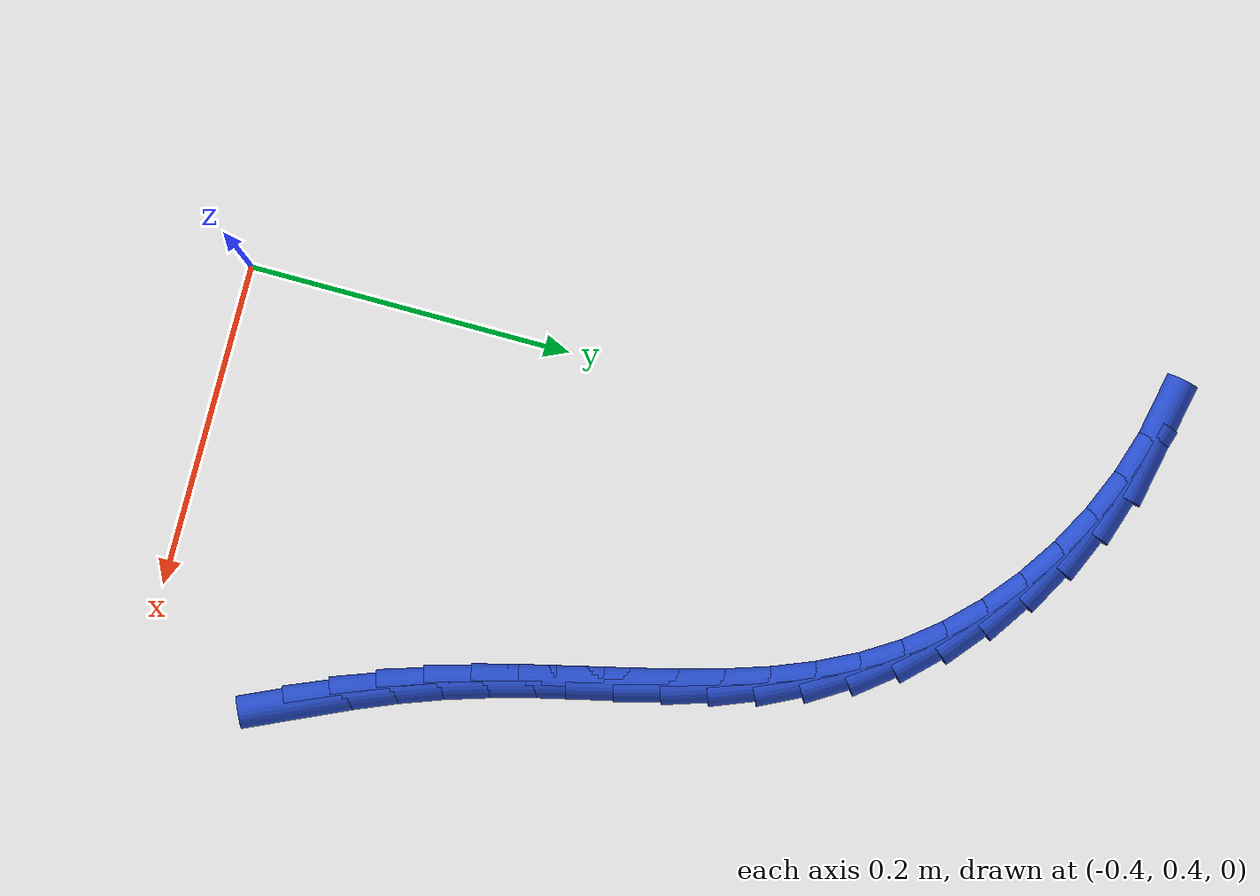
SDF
<sdf version="1.6">
 <world name="default">
  <model name="ground_plane">
   <static>1</static>
   <link name="link">
    <collision name="collision">
     <geometry><plane><normal>0 0 1</normal><size>100 100</size></plane></geometry>
     <surface><friction><ode><mu>100</mu><mu2>50</mu2></ode></friction></surface>
    </collision>
    <visual name="visual">
     <cast_shadows>0</cast_shadows>
     <geometry><plane><normal>0 0 1</normal><size>100 100</size></plane></geometry>
     <material>
      <script><uri>file://media/materials/scripts/gazebo.material</uri><name>Gazebo/WhiteGlow</name></script>
     </material>
    </visual>
   </link>
  </model>
  <model name="line">
   <link name="link_19">
    <pose>-0.15397915452750355 0.5019335383562409 0.01 0 1.57 -1.1375055177598266</pose>
    <collision name="collision">
     <geometry><cylinder><radius>0.01</radius><length>0.08</length></cylinder></geometry>
    </collision>
    <visual name="visual">
     <material>
      <script><name>Gazebo/Blue</name><uri>file://media/materials/scripts/gazebo.material</uri></script>
     </material>
     <geometry><cylinder><radius>0.01</radius><length>0.08</length></cylinder></geometry>
    </visual>
   </link>
   <link name="link_20">
    <pose>-0.16582137988488782 0.5275322597240039 0.01 0 1.57 -1.1728587956179286</pose>
    <collision name="collision">
     <geometry><cylinder><radius>0.01</radius><length>0.08</length></cylinder></geometry>
    </collision>
    <visual name="visual">
     <material>
      <script><name>Gazebo/Blue</name><uri>file://media/materials/scripts/gazebo.material</uri></script>
     </material>
     <geometry><cylinder><radius>0.01</radius><length>0.08</length></cylinder></geometry>
    </visual>
   </link>
   <link name="link_21">
    <pose>-0.17675538826458437 0.553543058561728 0.01 0 1.57 -1.216155259624458</pose>
    <collision name="collision">
     <geometry><cylinder><radius>0.01</radius><length>0.08</length></cylinder></geometry>
    </collision>
    <visual name="visual">
     <material>
      <script><name>Gazebo/Blue</name><uri>file://media/materials/scripts/gazebo.material</uri></script>
     </material>
     <geometry><cylinder><radius>0.01</radius><length>0.08</length></cylinder></geometry>
    </visual>
   </link>
   <link name="link_22">
    <pose>-0.18657073679844471 0.5800497557390633 0.01 0 1.57 -1.2657892929324055</pose>
    <collision name="collision">
     <geometry><cylinder><radius>0.01</radius><length>0.08</length></cylinder></geometry>
    </collision>
    <visual name="visual">
     <material>
      <script><name>Gazebo/Blue</name><uri>file://media/materials/scripts/gazebo.material</uri></script>
     </material>
     <geometry><cylinder><radius>0.01</radius><length>0.08</length></cylinder></geometry>
    </visual>
   </link>
   <link name="link_23">
    <pose>-0.1950931993404507 0.6071197192788982 0.01 0 1.57 -1.3067886795904688</pose>
    <collision name="collision">
     <geometry><cylinder><radius>0.01</radius><length>0.08</length></cylinder></geometry>
    </collision>
    <visual name="visual">
     <material>
      <script><name>Gazebo/Blue</name><uri>file://media/materials/scripts/gazebo.material</uri></script>
     </material>
     <geometry><cylinder><radius>0.01</radius><length>0.08</length></cylinder></geometry>
    </visual>
   </link>
   <link name="link_24">
    <pose>-0.20253383872016348 0.6346452847853522 0.01 0 1.57 -1.3305509640552622</pose>
    <collision name="collision">
     <geometry><cylinder><radius>0.01</radius><length>0.08</length></cylinder></geometry>
    </collision>
    <visual name="visual">
     <material>
      <script><name>Gazebo/Blue</name><uri>file://media/materials/scripts/gazebo.material</uri></script>
     </material>
     <geometry><cylinder><radius>0.01</radius><length>0.08</length></cylinder></geometry>
    </visual>
   </link>
   <link name="link_25">
    <pose>-0.2093363139412215 0.662413122054476 0.01 0 1.57 -1.3372827870785764</pose>
    <collision name="collision">
     <geometry><cylinder><radius>0.01</radius><length>0.08</length></cylinder></geometry>
    </collision>
    <visual name="visual">
     <material>
      <script><name>Gazebo/Blue</name><uri>file://media/materials/scripts/gazebo.material</uri></script>
     </material>
     <geometry><cylinder><radius>0.01</radius><length>0.08</length></cylinder></geometry>
    </visual>
   </link>
   <link name="link_26">
    <pose>-0.21594750210695585 0.6902084389360696 0.01 0 1.57 -1.327018796385844</pose>
    <collision name="collision">
     <geometry><cylinder><radius>0.01</radius><length>0.08</length></cylinder></geometry>
    </collision>
    <visual name="visual">
     <material>
      <script><name>Gazebo/Blue</name><uri>file://media/materials/scripts/gazebo.material</uri></script>
     </material>
     <geometry><cylinder><radius>0.01</radius><length>0.08</length></cylinder></geometry>
    </visual>
   </link>
   <link name="link_27">
    <pose>-0.22281428032069742 0.7178164432799337 0.01 0 1.57 -1.2994382978303265</pose>
    <collision name="collision">
     <geometry><cylinder><radius>0.01</radius><length>0.08</length></cylinder></geometry>
    </collision>
    <visual name="visual">
     <material>
      <script><name>Gazebo/Blue</name><uri>file://media/materials/scripts/gazebo.material</uri></script>
     </material>
     <geometry><cylinder><radius>0.01</radius><length>0.08</length></cylinder></geometry>
    </visual>
   </link>
   <link name="link_28">
    <pose>-0.23038352568577714 0.7450223429358682 0.01 0 1.57 -1.2539418290023816</pose>
    <collision name="collision">
     <geometry><cylinder><radius>0.01</radius><length>0.08</length></cylinder></geometry>
    </collision>
    <visual name="visual">
     <material>
      <script><name>Gazebo/Blue</name><uri>file://media/materials/scripts/gazebo.material</uri></script>
     </material>
     <geometry><cylinder><radius>0.01</radius><length>0.08</length></cylinder></geometry>
    </visual>
   </link>
   <link name="link_29">
    <pose>-0.23910211530552597 0.7716113457536737 0.01 0 1.57 -1.189892220184687</pose>
    <collision name="collision">
     <geometry><cylinder><radius>0.01</radius><length>0.08</length></cylinder></geometry>
    </collision>
    <visual name="visual">
     <material>
      <script><name>Gazebo/Blue</name><uri>file://media/materials/scripts/gazebo.material</uri></script>
     </material>
     <geometry><cylinder><radius>0.01</radius><length>0.08</length></cylinder></geometry>
    </visual>
   </link>
   <link name="link_30">
    <pose>-0.24941692628327483 0.7973686595831505 0.01 0 1.57 -1.1070680084785087</pose>
    <collision name="collision">
     <geometry><cylinder><radius>0.01</radius><length>0.08</length></cylinder></geometry>
    </collision>
    <visual name="visual">
     <material>
      <script><name>Gazebo/Blue</name><uri>file://media/materials/scripts/gazebo.material</uri></script>
     </material>
     <geometry><cylinder><radius>0.01</radius><length>0.08</length></cylinder></geometry>
    </visual>
   </link>
   <link name="link_31">
    <pose>-0.26177483572235477 0.8220794922740988 0.01 0 1.57 -1.0063335818160861</pose>
    <collision name="collision">
     <geometry><cylinder><radius>0.01</radius><length>0.08</length></cylinder></geometry>
    </collision>
    <visual name="visual">
     <material>
      <script><name>Gazebo/Blue</name><uri>file://media/materials/scripts/gazebo.material</uri></script>
     </material>
     <geometry><cylinder><radius>0.01</radius><length>0.08</length></cylinder></geometry>
    </visual>
   </link>
   <link name="link_32">
    <pose>-0.2766227195830525 0.845529051663795 0.01 0 1.57 -0.894278461633629</pose>
    <collision name="collision">
     <geometry><cylinder><radius>0.01</radius><length>0.08</length></cylinder></geometry>
    </collision>
    <visual name="visual">
     <material>
      <script><name>Gazebo/Blue</name><uri>file://media/materials/scripts/gazebo.material</uri></script>
     </material>
     <geometry><cylinder><radius>0.01</radius><length>0.08</length></cylinder></geometry>
    </visual>
   </link>
   <link name="link_33">
    <pose>-0.29426438142410216 0.867500977982338 0.01 0 1.57 -0.7871555242824446</pose>
    <collision name="collision">
     <geometry><cylinder><radius>0.01</radius><length>0.08</length></cylinder></geometry>
    </collision>
    <visual name="visual">
     <material>
      <script><name>Gazebo/Blue</name><uri>file://media/materials/scripts/gazebo.material</uri></script>
     </material>
     <geometry><cylinder><radius>0.01</radius><length>0.08</length></cylinder></geometry>
    </visual>
   </link>
   <link name="link_34">
    <pose>-0.314465290873548 0.8877730130746417 0.01 0 1.57 -0.6863180000720027</pose>
    <collision name="collision">
     <geometry><cylinder><radius>0.01</radius><length>0.08</length></cylinder></geometry>
    </collision>
    <visual name="visual">
     <material>
      <script><name>Gazebo/Blue</name><uri>file://media/materials/scripts/gazebo.material</uri></script>
     </material>
     <geometry><cylinder><radius>0.01</radius><length>0.08</length></cylinder></geometry>
    </visual>
   </link>
   <link name="link_35">
    <pose>-0.3368643249642868 0.9061215117434057 0.01 0 1.57 -0.5892572759337389</pose>
    <collision name="collision">
     <geometry><cylinder><radius>0.01</radius><length>0.08</length></cylinder></geometry>
    </collision>
    <visual name="visual">
     <material>
      <script><name>Gazebo/Blue</name><uri>file://media/materials/scripts/gazebo.material</uri></script>
     </material>
     <geometry><cylinder><radius>0.01</radius><length>0.08</length></cylinder></geometry>
    </visual>
   </link>
   <link name="link_36">
    <pose>-0.3611003607292149 0.9223228287913293 0.01 0 1.57 -0.4935074973112351</pose>
    <collision name="collision">
     <geometry><cylinder><radius>0.01</radius><length>0.08</length></cylinder></geometry>
    </collision>
    <visual name="visual">
     <material>
      <script><name>Gazebo/Blue</name><uri>file://media/materials/scripts/gazebo.material</uri></script>
     </material>
     <geometry><cylinder><radius>0.01</radius><length>0.08</length></cylinder></geometry>
    </visual>
   </link>
   <link name="link_37">
    <pose>-0.3868122752012287 0.9361533190211113 0.01 0 1.57 -0.3966394838077963</pose>
    <collision name="collision">
     <geometry><cylinder><radius>0.01</radius><length>0.08</length></cylinder></geometry>
    </collision>
    <visual name="visual">
     <material>
      <script><name>Gazebo/Blue</name><uri>file://media/materials/scripts/gazebo.material</uri></script>
     </material>
     <geometry><cylinder><radius>0.01</radius><length>0.08</length></cylinder></geometry>
    </visual>
   </link>
   <link name="link_38">
    <pose>-0.41363894541322527 0.9473893372354516 0.01 0 1.57 -0.2962336021896722</pose>
    <collision name="collision">
     <geometry><cylinder><radius>0.01</radius><length>0.08</length></cylinder></geometry>
    </collision>
    <visual name="visual">
     <material>
      <script><name>Gazebo/Blue</name><uri>file://media/materials/scripts/gazebo.material</uri></script>
     </material>
     <geometry><cylinder><radius>0.01</radius><length>0.08</length></cylinder></geometry>
    </visual>
   </link>
   <link name="link_39">
    <pose>-0.44121924839810067 0.9558072382370489 0.01 0 1.57 -0.18987629706242729</pose>
    <collision name="collision">
     <geometry><cylinder><radius>0.01</radius><length>0.08</length></cylinder></geometry>
    </collision>
    <visual name="visual">
     <material>
      <script><name>Gazebo/Blue</name><uri>file://media/materials/scripts/gazebo.material</uri></script>
     </material>
     <geometry><cylinder><radius>0.01</radius><length>0.08</length></cylinder></geometry>
    </visual>
   </link>
  </model>
 </world>
</sdf>
